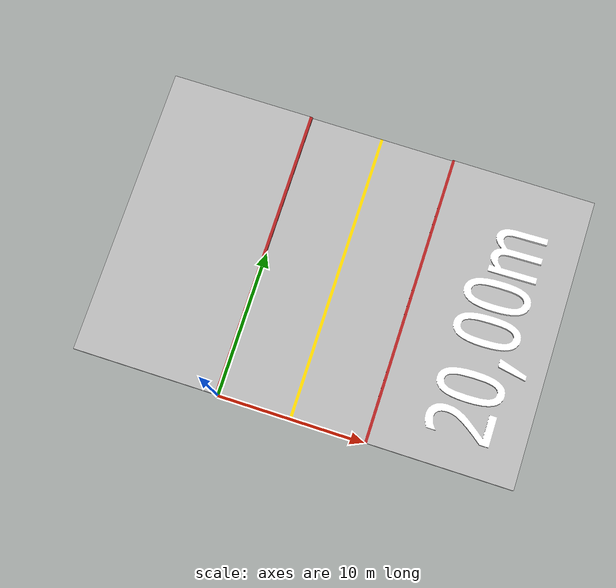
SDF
<?xml version="1.0" ?>
<sdf version="1.5">
   <model name="rectasinpeaton20,00m">
      <static>true</static>
      <link name="rectasinpeaton20,00m_link">
         <collision name="rectasinpeaton20,00m_collision">
            <pose>5 10 0.10  0 0 0</pose>
            <geometry>
               <box>
                  <size>30 20 0.20</size>
               </box>
            </geometry>
         </collision>
         <visual name="rectasinpeaton20,00m_mesh">
            <cast_shadows>false</cast_shadows>
            <geometry>
               <mesh>
                  <uri>model://rectasinpeaton20,00m/meshes/rectasinpeaton20,00m.dae</uri>
               </mesh>
            </geometry>
         </visual>
      </link>
   </model>
</sdf>
